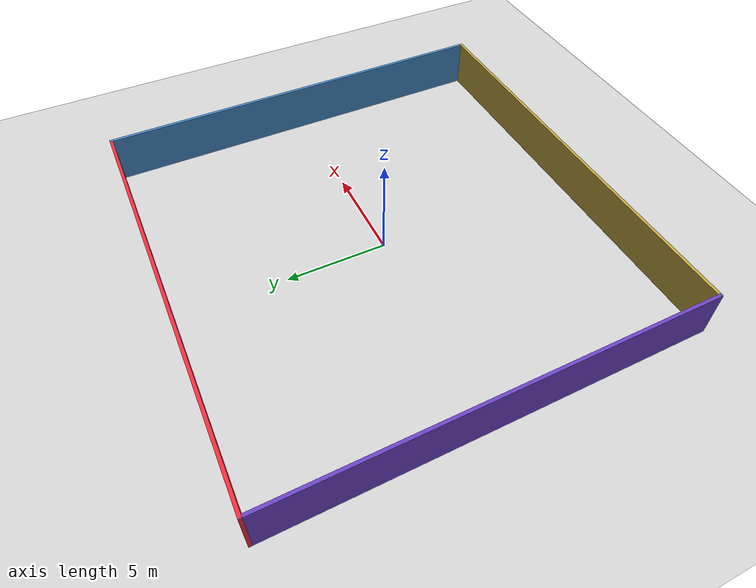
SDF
<sdf version="1.6">
 <world name="default">
  <light name="sun" type="directional">
   <pose>0 0 10 0 -0 0</pose>
   <diffuse>0.8 0.8 0.8 1</diffuse>
   <specular>0.2 0.2 0.2 1</specular>
   <attenuation>
    <range>1000</range>
    <constant>0.9</constant>
    <linear>0.01</linear>
    <quadratic>0.001</quadratic>
   </attenuation>
   <direction>-0.5 0.1 -0.9</direction>
  </light>
  <model name="ground_plane">
   <static>1</static>
   <link name="link">
    <collision name="collision">
     <geometry><plane><normal>0 0 1</normal><size>100 100</size></plane></geometry>
     <surface>
      <contact><collide_bitmask>65535</collide_bitmask></contact>
      <friction><ode><mu>100</mu><mu2>50</mu2></ode></friction>
     </surface>
    </collision>
    <visual name="visual">
     <cast_shadows>0</cast_shadows>
     <geometry><plane><normal>0 0 1</normal><size>100 100</size></plane></geometry>
     <material>
      <script><uri>file://media/materials/scripts/gazebo.material</uri><name>Gazebo/Grey</name></script>
     </material>
    </visual>
   </link>
  </model>
  <gravity>0 0 -9.8</gravity>
  <magnetic_field>6e-06 2.3e-05 -4.2e-05</magnetic_field>
  <atmosphere type="adiabatic"/>
  <physics name="default_physics" default="0" type="ode">
   <max_step_size>0.001</max_step_size>
   <real_time_factor>1</real_time_factor>
   <real_time_update_rate>1000</real_time_update_rate>
  </physics>
  <scene><ambient>0.4 0.4 0.4 1</ambient><background>0.7 0.7 0.7 1</background><shadows>1</shadows></scene>
  <audio><device>default</device></audio>
  <spherical_coordinates>
   <surface_model>EARTH_WGS84</surface_model>
   <latitude_deg>0</latitude_deg>
   <longitude_deg>0</longitude_deg>
   <elevation>0</elevation>
   <heading_deg>0</heading_deg>
  </spherical_coordinates>
  <model name="one_room">
   <pose>-0.030262 0.054512 0 0 -0 0</pose>
   <link name="Wall_5">
    <collision name="Wall_5_Collision">
     <geometry><box><size>21.25 0.15 2.5</size></box></geometry>
     <pose>0 0 1.25 0 -0 0</pose>
    </collision>
    <visual name="Wall_5_Visual">
     <pose>0 0 1.25 0 -0 0</pose>
     <geometry><box><size>21.25 0.15 2.5</size></box></geometry>
     <material>
      <script><uri>file://media/materials/scripts/gazebo.material</uri><name>Gazebo/Grey</name></script>
      <ambient>0.74902 0.639216 0.25098 1</ambient>
     </material>
     <meta><layer>0</layer></meta>
    </visual>
    <pose>0 -10.3152 0 0 -0 0</pose>
   </link>
   <link name="Wall_6">
    <collision name="Wall_6_Collision">
     <geometry><box><size>20.75 0.15 2.5</size></box></geometry>
     <pose>0 0 1.25 0 -0 0</pose>
    </collision>
    <visual name="Wall_6_Visual">
     <pose>0 0 1.25 0 -0 0</pose>
     <geometry><box><size>20.75 0.15 2.5</size></box></geometry>
     <material>
      <script><uri>file://media/materials/scripts/gazebo.material</uri><name>Gazebo/Grey</name></script>
      <ambient>0.25098 0.517647 0.74902 1</ambient>
     </material>
     <meta><layer>0</layer></meta>
    </visual>
    <pose>10.55 0.015208 0 0 -0 1.5708</pose>
   </link>
   <link name="Wall_8">
    <collision name="Wall_8_Collision">
     <geometry><box><size>21.25 0.15 2.5</size></box></geometry>
     <pose>0 0 1.25 0 -0 0</pose>
    </collision>
    <visual name="Wall_8_Visual">
     <pose>0 0 1.25 0 -0 0</pose>
     <geometry><box><size>21.25 0.15 2.5</size></box></geometry>
     <material>
      <script><uri>file://media/materials/scripts/gazebo.material</uri><name>Gazebo/Grey</name></script>
      <ambient>0.92549 0.160784 0.227451 1</ambient>
     </material>
     <meta><layer>0</layer></meta>
    </visual>
    <pose>0 10.3152 0 0 -0 3.14159</pose>
   </link>
   <link name="Wall_9">
    <collision name="Wall_9_Collision">
     <geometry><box><size>20.75 0.15 2.5</size></box></geometry>
     <pose>0 0 1.25 0 -0 0</pose>
    </collision>
    <visual name="Wall_9_Visual">
     <pose>0 0 1.25 0 -0 0</pose>
     <geometry><box><size>20.75 0.15 2.5</size></box></geometry>
     <material>
      <script><uri>file://media/materials/scripts/gazebo.material</uri><name>Gazebo/Grey</name></script>
      <ambient>0.407843 0.25098 0.74902 1</ambient>
     </material>
     <meta><layer>0</layer></meta>
    </visual>
    <pose>-10.55 0.015208 0 0 -0 -1.5708</pose>
   </link>
   <static>1</static>
  </model>
 </world>
</sdf>
